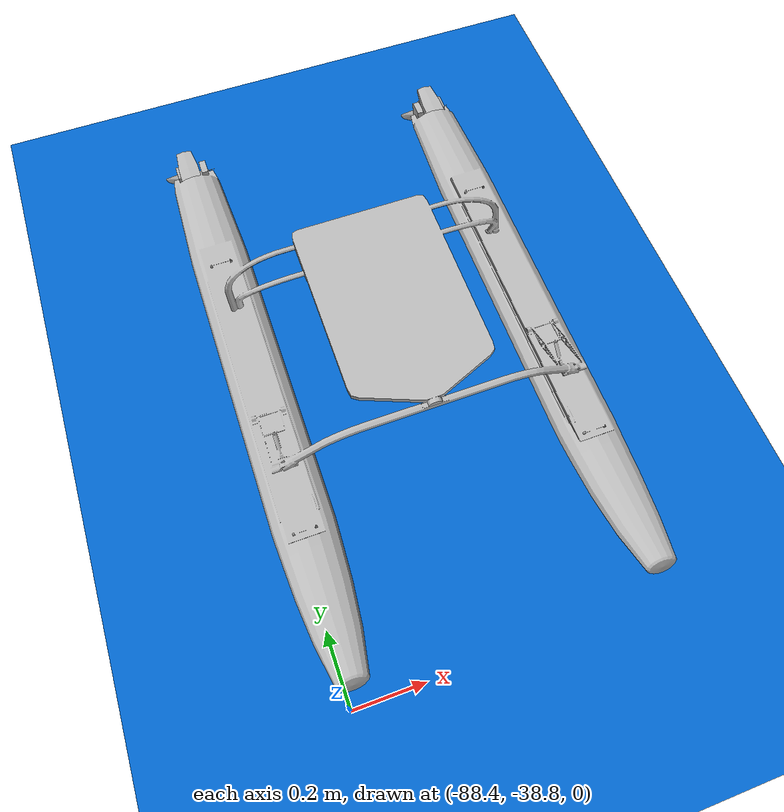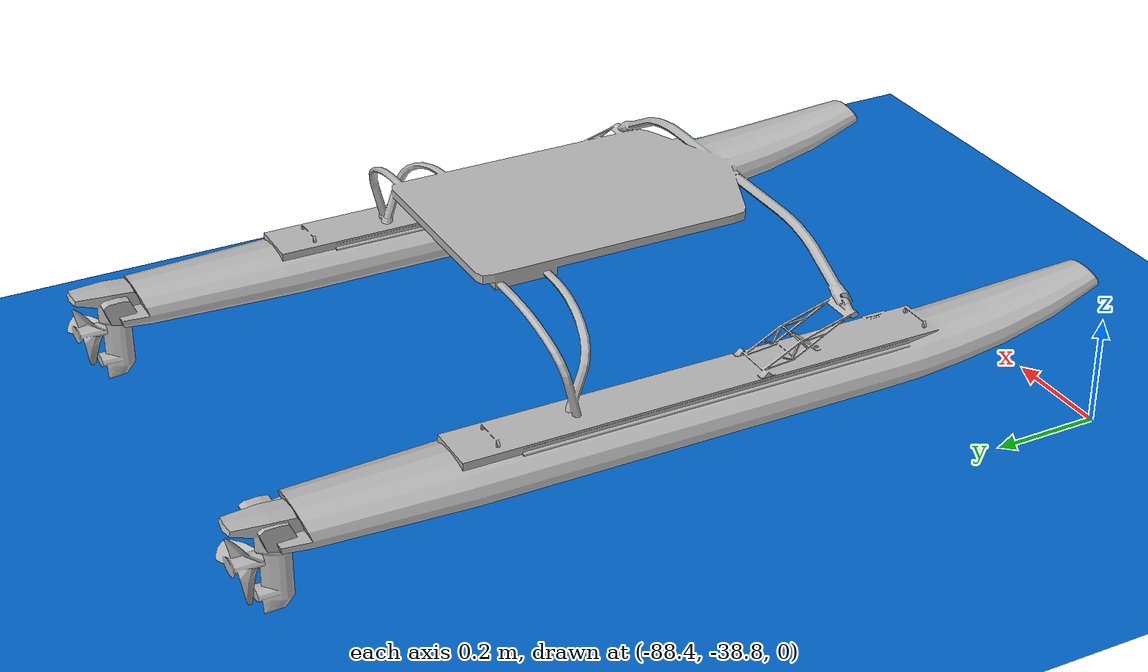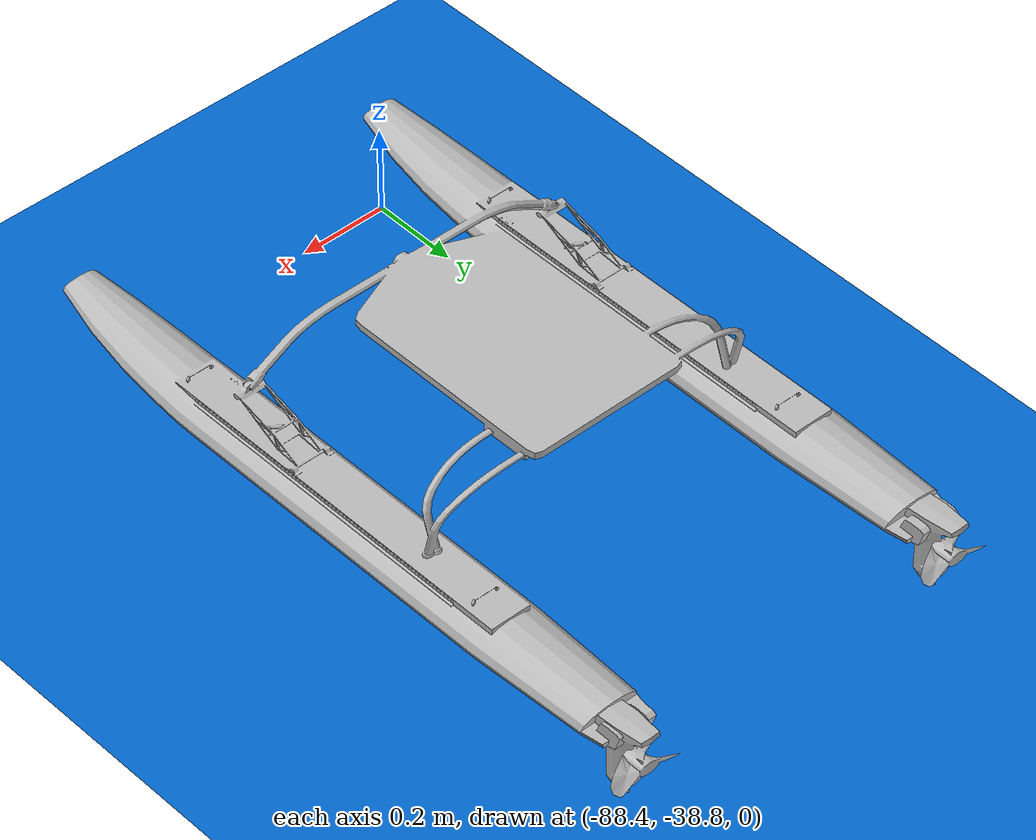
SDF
<?xml version="1.0" ?>
<sdf version="1.8">
  <world name="exhibition_water_world">
    <physics name="1ms" type="ignored">
      <max_step_size>0.001</max_step_size>
      <real_time_factor>1.0</real_time_factor>
    </physics>

    <plugin filename="gz-sim-physics-system" name="gz::sim::systems::Physics"></plugin>
    <plugin filename="gz-sim-user-commands-system" name="gz::sim::systems::UserCommands"></plugin>
    <plugin filename="gz-sim-scene-broadcaster-system" name="gz::sim::systems::SceneBroadcaster"></plugin>
    <plugin filename="gz-sim-sensors-system" name="gz::sim::systems::Sensors">
      <render_engine>ogre</render_engine>
    </plugin>
    <!-- Sun Light -->
    <light type="directional" name="sun">
      <cast_shadows>true</cast_shadows>
      <pose>0 0 10 0 0 0</pose>
      <diffuse>0.8 0.8 0.8 1</diffuse>
      <specular>0.2 0.2 0.2 1</specular>
      <direction>-0.5 0.1 -0.9</direction>
    </light>

    <!-- Water Plane Visual -->
    <model name="water_plane">
      <static>true</static>
      <pose>0 0 0 0 0 0</pose>
      <link name="link">
        <visual name="visual">
          <geometry>
            <plane>
              <normal>0 0 1</normal>
              <size>200 200</size>
            </plane>
          </geometry>
          <material>
            <ambient>0.0 0.3 0.6 0.8</ambient>
            <diffuse>0.0 0.4 0.8 0.8</diffuse>
            <specular>0.5 0.5 0.5 0.8</specular>
          </material>
        </visual>
      </link>
    </model>

    <model name="asv_boat">
      <pose>-88.0 -38.0 0.2 0 0 -1.57</pose>
      <link name="base_link">
        <inertial>
          <mass>20.0</mass>
          <pose>0 0 0 0 0 0</pose>
          <inertia>
            <ixx>5.2</ixx>
            <ixy>0</ixy>
            <ixz>0</ixz>
            <iyy>8.4</iyy>
            <iyz>0</iyz>
            <izz>9.1</izz>
          </inertia>
        </inertial>

        <visual name="hull_visual">
          <pose>0 0 0 0 0 0</pose>
          <geometry>
            <mesh>
              <uri>model://WAM-V-Base/mesh/WAM-V-Base.dae</uri>
              <scale>0.306 0.362 0.198</scale>
            </mesh>
          </geometry>
          <material>
            <pbr>
              <metal>
                <albedo_map>model://WAM-V-Base/mesh/WAM-V_Albedo.png</albedo_map>
                <normal_map>model://WAM-V-Base/mesh/WAM-V_Normal.png</normal_map>
                <roughness_map>model://WAM-V-Base/mesh/WAM-V_Roughness.png</roughness_map>
                <metalness_map>model://WAM-V-Base/mesh/WAM-V_Metalness.png</metalness_map>
              </metal>
            </pbr>
          </material>
        </visual>

        <visual name="engine_port_visual">
          <pose>-0.67 0.38 0.04 0 0 0</pose>
          <geometry><mesh><uri>model://engine/mesh/engine.dae</uri><scale>0.306 0.362 0.198</scale></mesh></geometry>
        </visual>
        <visual name="engine_stbd_visual">
          <pose>-0.67 -0.38 0.04 0 0 0</pose>
          <geometry><mesh><uri>model://engine/mesh/engine.dae</uri><scale>0.306 0.362 0.198</scale></mesh></geometry>
        </visual>

        <!-- Single collision box matching the hull's actual bounding box -->
        <collision name="hull_collision">
          <geometry><box><size>1.5 0.9 0.3</size></box></geometry>
        </collision>

        <sensor name="gpu_lidar" type="gpu_lidar">
          <pose>0.8 0 0.4 0 0 0</pose>
          <topic>/scan</topic>
          <update_rate>10</update_rate>
          <lidar>
            <scan>
              <horizontal>
                <samples>360</samples>
                <resolution>1</resolution>
                <min_angle>-3.14159</min_angle>
                <max_angle>3.14159</max_angle>
              </horizontal>
            </scan>
            <range>
              <min>1.0</min>
              <max>30.0</max>
              <resolution>0.01</resolution>
            </range>
          </lidar>
          <always_on>1</always_on>
          <visualize>true</visualize>
        </sensor>
      </link>

      <link name="propeller_port_link">
        <pose>-0.74 0.38 0.0 0 0 0</pose>
        <inertial>
          <mass>0.08</mass>
          <inertia><ixx>0.0015</ixx><iyy>0.0015</iyy><izz>0.0024</izz><ixy>0</ixy><ixz>0</ixz><iyz>0</iyz></inertia>
        </inertial>
        <visual name="propeller_port_visual">
          <geometry><mesh><uri>model://propeller/mesh/propeller.dae</uri><scale>0.306 0.362 0.198</scale></mesh></geometry>
        </visual>
      </link>
      <joint name="propeller_port_joint" type="revolute">
        <parent>base_link</parent>
        <child>propeller_port_link</child>
        <axis>
          <xyz>1 0 0</xyz>
          <limit><lower>-inf</lower><upper>inf</upper><effort>100</effort><velocity>100</velocity></limit>
          <dynamics><friction>0.05</friction><damping>0.05</damping></dynamics>
        </axis>
      </joint>

      <link name="propeller_stbd_link">
        <pose>-0.74 -0.38 0.0 0 0 0</pose>
        <inertial>
          <mass>0.08</mass>
          <inertia><ixx>0.0015</ixx><iyy>0.0015</iyy><izz>0.0024</izz><ixy>0</ixy><ixz>0</ixz><iyz>0</iyz></inertia>
        </inertial>
        <visual name="propeller_stbd_visual">
          <geometry><mesh><uri>model://propeller/mesh/propeller.dae</uri><scale>0.306 0.362 0.198</scale></mesh></geometry>
        </visual>
      </link>
      <joint name="propeller_stbd_joint" type="revolute">
        <parent>base_link</parent>
        <child>propeller_stbd_link</child>
        <axis>
          <xyz>1 0 0</xyz>
          <limit><lower>-inf</lower><upper>inf</upper><effort>100</effort><velocity>100</velocity></limit>
          <dynamics><friction>0.05</friction><damping>0.05</damping></dynamics>
        </axis>
      </joint>

      <plugin filename="libSurface.so" name="vrx::Surface">
        <link_name>base_link</link_name>
        <hull_length>1.5</hull_length>
        <hull_radius>0.10</hull_radius>
        <fluid_level>0</fluid_level>
        <points>
          <point>0.305 0.38 0</point>
          <point>-0.305 0.38 0</point>
        </points>
      </plugin>
      <plugin filename="libSurface.so" name="vrx::Surface">
        <link_name>base_link</link_name>
        <hull_length>1.5</hull_length>
        <hull_radius>0.10</hull_radius>
        <fluid_level>0</fluid_level>
        <points>
          <point>0.305 -0.38 0</point>
          <point>-0.305 -0.38 0</point>
        </points>
      </plugin>

      <plugin filename="libSimpleHydrodynamics.so" name="vrx::SimpleHydrodynamics">
        <link_name>base_link</link_name>
        <xDotU>0.0</xDotU>
        <yDotV>0.0</yDotV>
        <nDotR>0.0</nDotR>
        <xU>1.05</xU>
        <xUU>16.24</xUU>
        <yV>22.5</yV>
        <yVV>7.5</yVV>
        <zW>20.0</zW>
        <zWW>10.0</zWW>
        <kP>7.5</kP>
        <kPP>0.0</kPP>
        <mQ>15.0</mQ>
        <mQQ>0.0</mQQ>
        <nR>12.0</nR>
        <nRR>0.0</nRR>
      </plugin>

      <plugin filename="gz-sim-thruster-system" name="gz::sim::systems::Thruster">
        <joint_name>propeller_port_joint</joint_name>
        <thrust_coefficient>0.004422</thrust_coefficient>
        <fluid_density>1000</fluid_density>
        <propeller_diameter>0.06</propeller_diameter>
        <velocity_control>true</velocity_control>
        <max_thrust_cmd>154.5</max_thrust_cmd>
        <min_thrust_cmd>-120.6</min_thrust_cmd>
        <topic>thrusters/left/thrust</topic>
      </plugin>
      <plugin filename="gz-sim-thruster-system" name="gz::sim::systems::Thruster">
        <joint_name>propeller_stbd_joint</joint_name>
        <thrust_coefficient>0.004422</thrust_coefficient>
        <fluid_density>1000</fluid_density>
        <propeller_diameter>0.06</propeller_diameter>
        <velocity_control>true</velocity_control>
        <!-- Mirrors the port thruster above — same 3x Flash-mode headroom, same reasoning. -->
        <max_thrust_cmd>154.5</max_thrust_cmd>
        <min_thrust_cmd>-120.6</min_thrust_cmd>
        <topic>thrusters/right/thrust</topic>
      </plugin>

      <!-- Publish Odometry to /odom -->
      <plugin filename="gz-sim-odometry-publisher-system" name="gz::sim::systems::OdometryPublisher">
        <odom_topic>/odom</odom_topic>
        <odom_frame>odom</odom_frame>
        <robot_base_frame>base_link</robot_base_frame>
        <dimensions>3</dimensions>
      </plugin>
    </model>
  </world>
</sdf>
